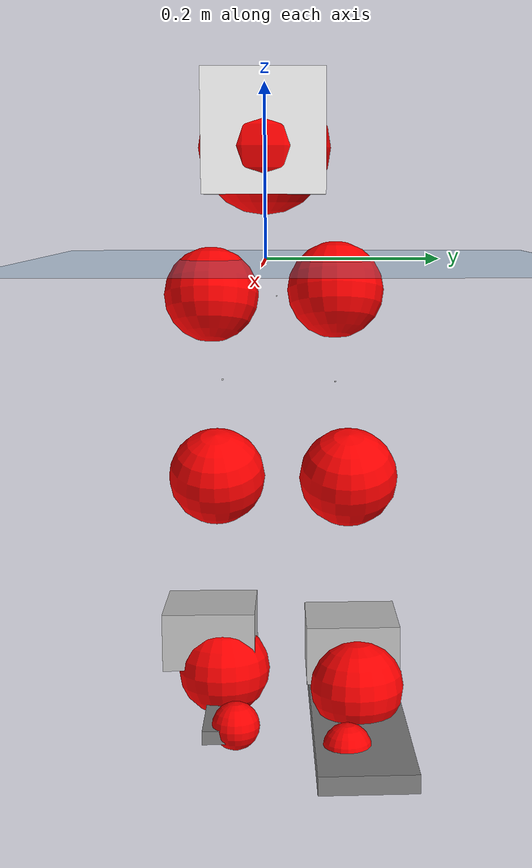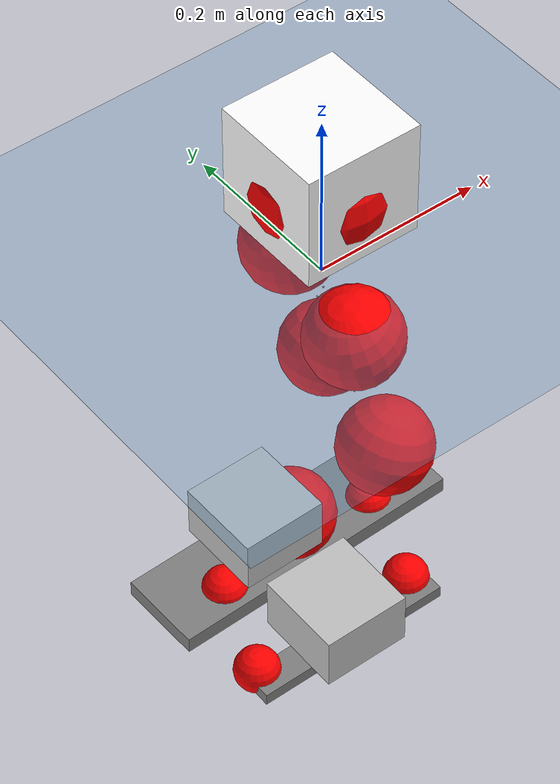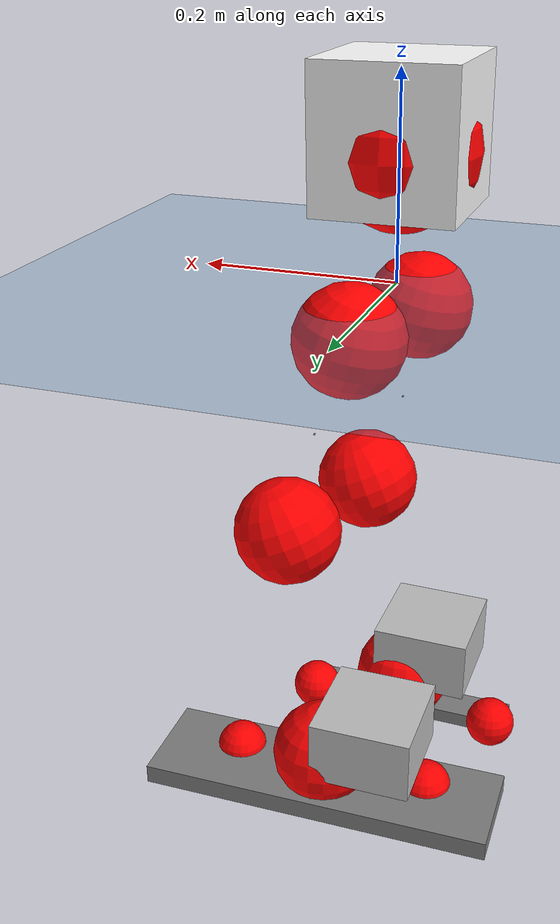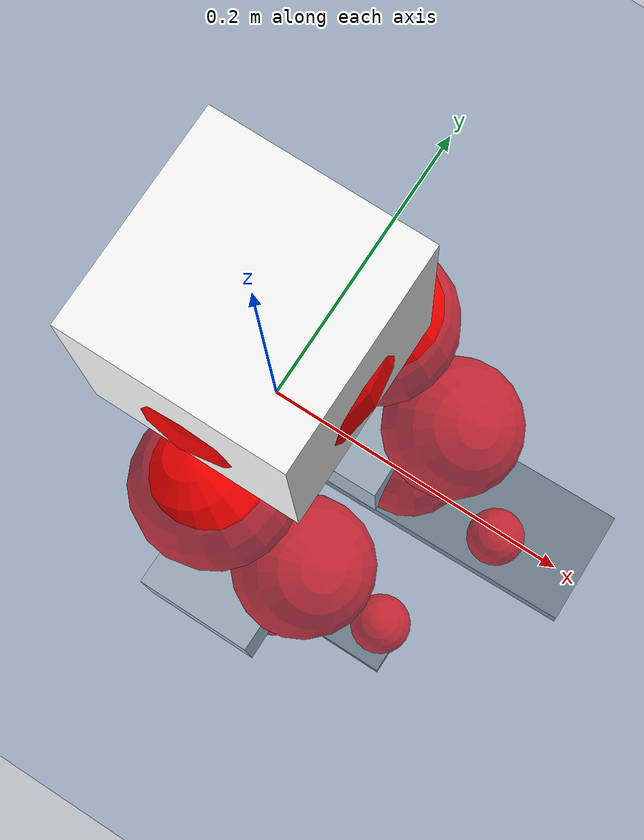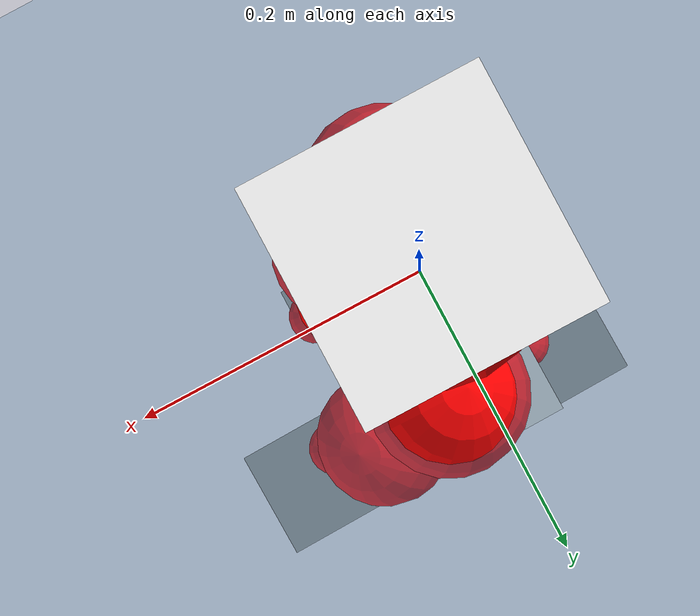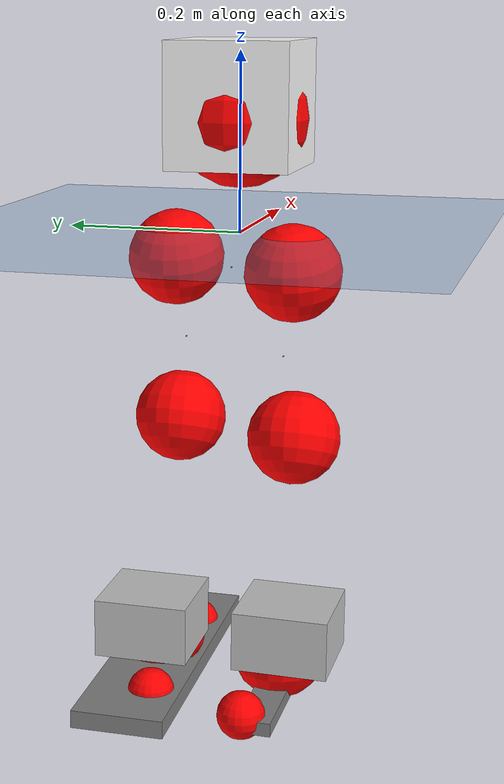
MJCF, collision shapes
<mujoco model="pi_12dof_release_v1">
  <compiler angle="radian" assetdir="assets" balanceinertia="true" inertiafromgeom="false"/>

  <option timestep="0.005" density="1.2" viscosity="2e-05"/>

  <size nkey="1"/>

  <visual>
    <quality shadowsize="8192"/>
    <map shadowclip="0.5"/>
  </visual>

  <default>
    <default class="/">
      <joint armature="0.01" damping="0.01" frictionloss="0.01"/>
      <geom contype="0" conaffinity="0" group="1" solref="-1000 -80"/>
      <site size="0.01 0.005 0.005" group="5"/>
      <general forcelimited="true" biastype="affine" gainprm="20" biasprm="0 -20 -0.5"/>
      <default class="foot">
        <geom size="0.0845 0.036 0.005" type="box" condim="6" group="4" priority="1" friction="0.9 0.2 0.2" solimp="0.015 1 0.005"/>
      </default>
      <default class="reward_collision_sphere">
        <geom group="5" rgba="1 0 0 1"/>
      </default>
    </default>
  </default>

  <asset>
    <texture type="skybox" colorspace="auto" name="//unnamed_texture_0" builtin="gradient" rgb1="0.95 0.95 0.95" rgb2="0.95 0.95 0.95" width="100" height="600"/>
    <texture type="2d" colorspace="auto" name="texplane" builtin="checker" rgb1="0.345 0.575 0.748" rgb2="0.345 0.575 0.748" markrgb="1 1 1" width="512" height="512"/>
    <material name="MatPlane" class="/" texture="texplane" texuniform="true" texrepeat="2 2" specular="0.9"/>
    <mesh name="baselink_1" class="/" file="baselink_1.STL"/>
    <mesh name="r_hip_pitch_link" class="/" file="r_hip_pitch_link.STL"/>
    <mesh name="r_hip_roll_link" class="/" file="r_hip_roll_link.STL"/>
    <mesh name="r_thigh_link" class="/" file="r_thigh_link.STL"/>
    <mesh name="r_calf_link" class="/" file="r_calf_link.STL"/>
    <mesh name="r_ankle_pitch_link" class="/" file="r_ankle_pitch_link.STL"/>
    <mesh name="r_ankle_roll_link" class="/" file="r_ankle_roll_link.STL"/>
    <mesh name="l_hip_pitch_link" class="/" file="l_hip_pitch_link.STL"/>
    <mesh name="l_hip_roll_link" class="/" file="l_hip_roll_link.STL"/>
    <mesh name="l_thigh_link" class="/" file="l_thigh_link.STL"/>
    <mesh name="l_calf_link" class="/" file="l_calf_link.STL"/>
    <mesh name="l_ankle_pitch_link" class="/" file="l_ankle_pitch_link.STL"/>
    <mesh name="l_ankle_roll_link" class="/" file="l_ankle_roll_link.STL"/>
  </asset>

  <worldbody>
    <geom name="floor" class="/" size="100 100 0.125" type="plane" group="0" material="MatPlane"/>
    <light name="toplight_shadow" class="/" pos="0 0 5" dir="0.0990148 0.0990148 -0.990148" type="directional" ambient="0.04 0.04 0.04" diffuse="0.55 0.55 0.55" specular="0.12 0.12 0.12"/>
    <light name="toplight_fill" class="/" pos="0 0 5" dir="0.0990148 0.0990148 -0.990148" type="directional" castshadow="false" ambient="0.04 0.04 0.04" diffuse="0.3 0.3 0.3" specular="0.08 0.08 0.08"/>
    <body name="trunk" pos="-0.0024907 -0.000657639 0.0109518" quat="0.999999 -0.000166859 0.0014066 0.000342559">
      <inertial pos="0.0159166 0.0136595 0.0586132" quat="0.6798 0.0338643 0.0178655 0.732398" mass="5.59735" diaginertia="0.0736967 0.00434787 0.0428705"/>
      <joint name="//unnamed_joint_0" type="free"/>
      <geom name="//unnamed_geom_1" class="/" type="mesh" density="0" rgba="1 1 1 1" mesh="baselink_1"/>
      <geom name="//unnamed_geom_2" class="/" size="0.0688765 0.0688765 0.0688765" pos="0 0 0.131585" type="box" rgba="1 1 1 1"/>
      <geom name="//unnamed_geom_3" class="reward_collision_sphere" size="0.0757641" pos="0 0 0.115137"/>
      <site name="imu" class="/" pos="0.079048 0.0171013 -0.0681131" size="0.0137753"/>
      <camera name="track" class="/" pos="0 -1.79816 0" quat="0.707107 0.707107 0 0" mode="trackcom"/>
      <camera name="ego_camera" class="/" pos="0.119152 0 0.296066" quat="-0.5 -0.5 0.5 0.5"/>
      <body name="r_hip_pitch_link" pos="-0.00347828 -0.013993 -0.0532672" quat="0.991746 -0.0022034 -0.128196 -0.000282897">
        <inertial pos="-0.0124359 -0.0411799 0.00147584" quat="-0.045565 0.732386 -0.0161816 0.67917" mass="1.15779" diaginertia="0.0013207 5.88701e-05 0.000936866"/>
        <joint name="r_hip_pitch_joint" class="/" pos="0 0 0" axis="0.0749916 -0.99671 -0.0307493" range="-1.73319 1.54247" armature="0.019507" damping="0.0931036" frictionloss="0.0183261"/>
        <geom name="//unnamed_geom_4" class="/" type="mesh" density="0" rgba="0.75294 0.75294 0.75294 1" mesh="r_hip_pitch_link"/>
        <geom name="//unnamed_geom_5" class="/" size="0.000688765 0.000688765 0.000688765" type="box" rgba="0.75294 0.75294 0.75294 1"/>
        <body name="r_hip_roll_link" pos="-0.00119184 -0.0487945 0.000726554" quat="0.999999 0.000594253 0.000676646 0.000713809">
          <inertial pos="-0.0103696 -0.000988943 -0.114191" quat="0.717613 -0.0679803 -0.0611652 0.690412" mass="0.867716" diaginertia="0.0038836 0.00015893 0.00158431"/>
          <joint name="r_hip_roll_joint" class="/" pos="0 0 0" axis="-0.996955 -0.0558194 0.0544449" stiffness="0.0234663" range="0.159793 0.360079" armature="0.0192779" damping="0" frictionloss="0.00585726"/>
          <geom name="//unnamed_geom_6" class="/" type="mesh" density="0" rgba="0.75294 0.75294 0.75294 1" mesh="r_hip_roll_link"/>
          <geom name="//unnamed_geom_7" class="/" size="0.000688765 0.000688765 0.000688765" type="box" rgba="0.75294 0.75294 0.75294 1"/>
          <geom name="//unnamed_geom_8" class="reward_collision_sphere" size="0.0551012"/>
          <body name="r_thigh_link" pos="-0.0128879 0.0128858 -0.0981017" quat="0.999981 0.00217818 -0.00529138 -0.00247436">
            <inertial pos="0.00503781 -0.000171298 -0.0730209" quat="0.753089 0.657806 0.0011633 -0.0120926" mass="0.3339" diaginertia="0.00142087 5.54764e-05 0.000822382"/>
            <joint name="r_thigh_joint" class="/" pos="0 0 0" axis="0.045522 0.023737 -0.998681" range="-0.435567 0.461582" armature="0.0155851" damping="0.00264373" frictionloss="0.0111334"/>
            <geom name="//unnamed_geom_9" class="/" type="mesh" density="0" rgba="0.75294 0.75294 0.75294 1" mesh="r_thigh_link"/>
            <geom name="//unnamed_geom_10" class="/" size="0.000688765 0.000688765 0.000688765" type="box" rgba="0.75294 0.75294 0.75294 1"/>
            <body name="r_calf_link" pos="0.0103341 -0.00529028 -0.113102" quat="0.947646 0.000167353 0.319323 -0.000139995">
              <inertial pos="-0.0139046 0.00181111 -0.116907" quat="0.999989 -0.0035847 -0.00131926 0.00279595" mass="1.98172" diaginertia="0.0342231 0.00158734 0.00185765"/>
              <joint name="r_calf_joint" class="/" pos="0 0 0" axis="-0.0414356 -0.998596 -0.0330102" stiffness="0.0127726" range="-1.60877 0.465314" armature="0.0210477" damping="0" frictionloss="0.0196111"/>
              <geom name="//unnamed_geom_11" class="/" type="mesh" density="0" rgba="0.75294 0.75294 0.75294 1" mesh="r_calf_link"/>
              <geom name="//unnamed_geom_12" class="/" size="0.000688765 0.000688765 0.000688765" type="box" rgba="0.75294 0.75294 0.75294 1"/>
              <geom name="//unnamed_geom_13" class="reward_collision_sphere" size="0.0551012"/>
              <body name="r_ankle_pitch_link" pos="0.00783206 -0.0145081 -0.221691" quat="0.980136 0.0020901 -0.198316 0.000192994">
                <inertial pos="0.00751422 -0.000483793 0.00239958" quat="0.0227851 0.717696 0.0585753 0.693514" mass="0.625291" diaginertia="0.00346106 0.000130595 0.00148746"/>
                <joint name="r_ankle_pitch_joint" class="/" pos="0 0 0" axis="0.0252279 -0.999677 0.00305401" stiffness="0.055668" range="-1.19533 0.4153" armature="0.0169496" damping="0.0807934" frictionloss="0.0140835"/>
                <geom name="//unnamed_geom_14" class="/" type="mesh" density="0" rgba="0.75294 0.75294 0.75294 1" mesh="r_ankle_pitch_link"/>
                <geom name="//unnamed_geom_15" class="/" size="0.0537237 0.0551012 0.0344382" type="box" rgba="0.75294 0.75294 0.75294 1"/>
                <body name="r_ankle_roll_link" pos="0.105931 0.0170596 -0.00734573" quat="0.999999 0.000539586 0.000547193 0.000813028">
                  <inertial pos="-0.0379774 0.00192744 -0.038266" quat="0.593803 0.399104 0.424127 0.555185" mass="1.40355" diaginertia="0.013536 0.000692598 0.00330161"/>
                  <joint name="r_ankle_roll_joint" class="/" pos="0 0 0" axis="-0.999979 0.00517744 -0.00395403" range="0.0603962 0.0068089" armature="0.00968169" damping="0.0826797" frictionloss="0.00465009"/>
                  <geom name="//unnamed_geom_16" class="/" type="mesh" density="0" rgba="0.75294 0.75294 0.75294 1" mesh="r_ankle_roll_link"/>
                  <geom name="//unnamed_geom_17" class="/" type="mesh" rgba="0.75294 0.75294 0.75294 1" mesh="r_ankle_roll_link"/>
                  <geom name="right_foot" class="foot" size="0.125224 0.0194604 0.00794942" pos="-0.0810234 0 -0.0723718"/>
                  <geom name="//unnamed_geom_19" class="reward_collision_sphere" size="0.0551012" pos="-0.0794348 0 -0.0328963"/>
                  <geom name="//unnamed_geom_20" class="reward_collision_sphere" size="0.0275506" pos="0.0238304 0.0179816 -0.0657925"/>
                  <geom name="//unnamed_geom_21" class="reward_collision_sphere" size="0.0275506" pos="-0.190643 0.0179816 -0.0657925"/>
                  <site name="right_foot" class="foot" pos="-0.0810234 0 -0.0723718" size="0.0137753"/>
                </body>
              </body>
            </body>
          </body>
        </body>
      </body>
      <body name="l_hip_pitch_link" pos="0.0154518 0.0132138 -0.0527755" quat="0.992385 0.000739061 -0.123152 0.00231928">
        <inertial pos="-0.00663431 0.034793 -0.0021612" quat="-0.0550115 0.703291 -0.0169224 0.708568" mass="1.01242" diaginertia="0.00163618 5.8089e-05 0.0016511"/>
        <joint name="l_hip_pitch_joint" class="/" pos="0 0 0" axis="-0.0414463 0.998284 -0.0413596" stiffness="0.0289507" range="-0.968608 1.67475" armature="0.00350089" damping="0.0782986" frictionloss="0.0166336"/>
        <geom name="//unnamed_geom_22" class="/" type="mesh" density="0" rgba="0.75294 0.75294 0.75294 1" mesh="l_hip_pitch_link"/>
        <geom name="//unnamed_geom_23" class="/" size="0.000688765 0.000688765 0.000688765" type="box" rgba="0.75294 0.75294 0.75294 1"/>
        <body name="l_hip_roll_link" pos="0.0102683 0.0675752 0.00523898" quat="1 0.000434036 -0.000664623 -0.0002533">
          <inertial pos="-0.00148216 -0.0122732 -0.0963139" quat="0.701435 -0.0775998 -0.0670825 0.705314" mass="1.01832" diaginertia="0.00336258 0.000184612 0.00144322"/>
          <joint name="l_hip_roll_joint" class="/" pos="0 0 0" axis="-0.996995 0.0506045 0.0586602" range="-0.812279 -0.090812" armature="0.011276" damping="0.0364944" frictionloss="0.0231515"/>
          <geom name="//unnamed_geom_24" class="/" type="mesh" density="0" rgba="0.75294 0.75294 0.75294 1" mesh="l_hip_roll_link"/>
          <geom name="//unnamed_geom_25" class="/" size="0.000688765 0.000688765 0.000688765" type="box" rgba="0.75294 0.75294 0.75294 1"/>
          <geom name="//unnamed_geom_26" class="reward_collision_sphere" size="0.0551012"/>
          <body name="l_thigh_link" pos="0.0103976 -0.00145156 -0.106868" quat="0.999993 -0.00124277 -0.000436489 0.00340818">
            <inertial pos="0.000991233 -2.30724e-06 -0.0772831" quat="0.706055 0.704665 -0.00646821 0.0699424" mass="0.293719" diaginertia="0.00123404 5.34904e-05 0.000836529"/>
            <joint name="l_thigh_joint" class="/" pos="0 0 0" axis="-0.030049 0.0189652 -0.999368" stiffness="0.0043881" range="-0.406886 0.0959228" armature="0.00819497" damping="0.0700193" frictionloss="0.00678327"/>
            <geom name="//unnamed_geom_27" class="/" type="mesh" density="0" rgba="0.75294 0.75294 0.75294 1" mesh="l_thigh_link"/>
            <geom name="//unnamed_geom_28" class="/" size="0.000688765 0.000688765 0.000688765" type="box" rgba="0.75294 0.75294 0.75294 1"/>
            <body name="l_calf_link" pos="-0.00169401 0.0141983 -0.107603" quat="0.949069 0.0031528 0.315044 0.00240872">
              <inertial pos="0.0148244 0.00410767 -0.127936" quat="0.999464 0.0107072 -0.0148001 0.027163" mass="2.36744" diaginertia="0.0394679 0.00226318 0.00276989"/>
              <joint name="l_calf_joint" class="/" pos="0 0 0" axis="-0.0339361 0.999408 -0.00562876" stiffness="0.0314401" range="-0.789736 1.98643" armature="0.0225091" damping="0.0101973" frictionloss="0.0232428"/>
              <geom name="//unnamed_geom_29" class="/" type="mesh" density="0" rgba="0.75294 0.75294 0.75294 1" mesh="l_calf_link"/>
              <geom name="//unnamed_geom_30" class="/" size="0.000688765 0.000688765 0.000688765" type="box" rgba="0.75294 0.75294 0.75294 1"/>
              <geom name="//unnamed_geom_31" class="reward_collision_sphere" size="0.0551012"/>
              <body name="l_ankle_pitch_link" pos="-0.00184737 0.00837761 -0.244625" quat="0.979911 0.000564981 -0.199435 -0.000686445">
                <inertial pos="-0.00371682 0.00407317 -0.0041294" quat="-0.00183099 0.706922 0.00435424 0.707276" mass="0.660273" diaginertia="0.00436682 0.00015448 0.00163479"/>
                <joint name="l_ankle_pitch_joint" class="/" pos="0 0 0" axis="0.0596361 0.99818 0.00897592" stiffness="0.00569029" range="-0.512112 1.35527" armature="0.0124712" damping="0.0719436" frictionloss="0.0021892"/>
                <geom name="//unnamed_geom_32" class="/" type="mesh" density="0" rgba="0.75294 0.75294 0.75294 1" mesh="l_ankle_pitch_link"/>
                <geom name="//unnamed_geom_33" class="/" size="0.0537237 0.0551012 0.0344382" type="box" rgba="0.75294 0.75294 0.75294 1"/>
                <body name="l_ankle_roll_link" pos="0.13356 0.0047398 -0.00397606" quat="0.999991 0.00072548 -4.67652e-06 0.00415757">
                  <inertial pos="-0.0306492 -0.00202237 -0.0256731" quat="0.567664 0.431808 0.478306 0.51237" mass="1.26756" diaginertia="0.0124233 0.000495254 0.00325706"/>
                  <joint name="l_ankle_roll_joint" class="/" pos="0 0 0" axis="-0.999952 -0.00541393 -0.00811258" range="-0.168792 0.172328" armature="0.0180763" damping="0" frictionloss="0.024227"/>
                  <geom name="//unnamed_geom_34" class="/" type="mesh" density="0" rgba="0.75294 0.75294 0.75294 1" mesh="l_ankle_roll_link"/>
                  <geom name="//unnamed_geom_35" class="/" type="mesh" rgba="0.75294 0.75294 0.75294 1" mesh="l_ankle_roll_link"/>
                  <geom name="left_foot" class="foot" size="0.19031 0.0542462 0.0105886" pos="-0.0810234 0 -0.0723718"/>
                  <geom name="//unnamed_geom_37" class="reward_collision_sphere" size="0.0551012" pos="-0.0794348 0 -0.0328963"/>
                  <geom name="//unnamed_geom_38" class="reward_collision_sphere" size="0.0275506" pos="0.0238304 -0.0179816 -0.0657925"/>
                  <geom name="//unnamed_geom_39" class="reward_collision_sphere" size="0.0275506" pos="-0.190643 -0.0179816 -0.0657925"/>
                  <site name="left_foot" class="foot" pos="-0.0810234 0 -0.0723718" size="0.0137753"/>
                </body>
              </body>
            </body>
          </body>
        </body>
      </body>
    </body>
  </worldbody>

  <contact>
    <pair class="/" geom1="floor" geom2="right_foot" name="//unnamed_contact_1"/>
    <pair class="/" geom1="floor" geom2="left_foot" name="//unnamed_contact_0"/>
  </contact>

  <actuator>
    <general name="r_hip_pitch_joint" class="/" joint="r_hip_pitch_joint" forcerange="-21.6457 21.6457" gainprm="30.1012" biasprm="0 -30.1012 -0.456868"/>
    <general name="r_hip_roll_joint" class="/" joint="r_hip_roll_joint" forcerange="-42.897 42.897" gainprm="30.1012" biasprm="0 -30.1012 -0.456868"/>
    <general name="r_thigh_joint" class="/" joint="r_thigh_joint" forcerange="-16.3002 16.3002" gainprm="30.1012" biasprm="0 -30.1012 -0.456868"/>
    <general name="r_calf_joint" class="/" joint="r_calf_joint" forcerange="-29.569 29.569" gainprm="30.1012" biasprm="0 -30.1012 -0.456868"/>
    <general name="r_ankle_pitch_joint" class="/" joint="r_ankle_pitch_joint" forcerange="-42.5961 42.5961" gainprm="30.1012" biasprm="0 -30.1012 -0.456868"/>
    <general name="r_ankle_roll_joint" class="/" joint="r_ankle_roll_joint" forcerange="-27.7274 27.7274" gainprm="30.1012" biasprm="0 -30.1012 -0.456868"/>
    <general name="l_hip_pitch_joint" class="/" joint="l_hip_pitch_joint" forcerange="-33.1229 33.1229" gainprm="30.1012" biasprm="0 -30.1012 -0.456868"/>
    <general name="l_hip_roll_joint" class="/" joint="l_hip_roll_joint" forcerange="-39.1553 39.1553" gainprm="30.1012" biasprm="0 -30.1012 -0.456868"/>
    <general name="l_thigh_joint" class="/" joint="l_thigh_joint" forcerange="-34.679 34.679" gainprm="30.1012" biasprm="0 -30.1012 -0.456868"/>
    <general name="l_calf_joint" class="/" joint="l_calf_joint" forcerange="-39.7845 39.7845" gainprm="30.1012" biasprm="0 -30.1012 -0.456868"/>
    <general name="l_ankle_pitch_joint" class="/" joint="l_ankle_pitch_joint" forcerange="-20.1842 20.1842" gainprm="30.1012" biasprm="0 -30.1012 -0.456868"/>
    <general name="l_ankle_roll_joint" class="/" joint="l_ankle_roll_joint" forcerange="-43.483 43.483" gainprm="30.1012" biasprm="0 -30.1012 -0.456868"/>
  </actuator>

  <sensor>
    <gyro site="imu" name="imu_angular_velocity"/>
    <velocimeter site="imu" name="imu_linear_velocity"/>
    <framelinvel objtype="site" objname="left_foot" name="left_foot_global_linear_velocity"/>
    <framelinvel objtype="site" objname="right_foot" name="right_foot_global_linear_velocity"/>
  </sensor>

  <keyframe>
    <key name="home" qpos="0 0 0.291 1 0 0 0 0.4 0 0 -0.8 0.4 0 -0.4 0 0 0.8 -0.4 0"/>
  </keyframe>
</mujoco>
